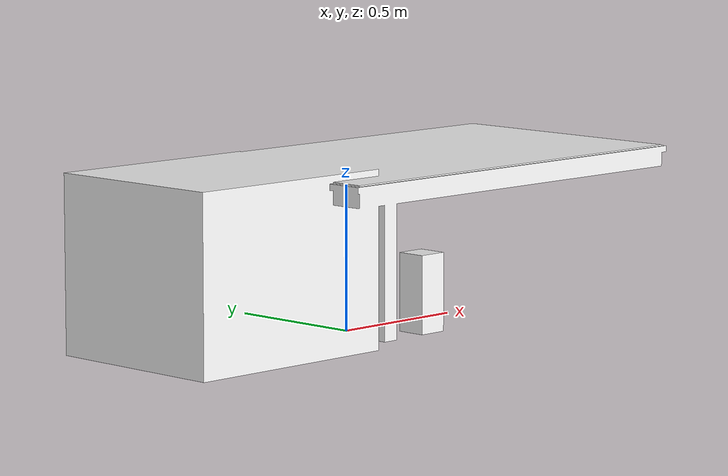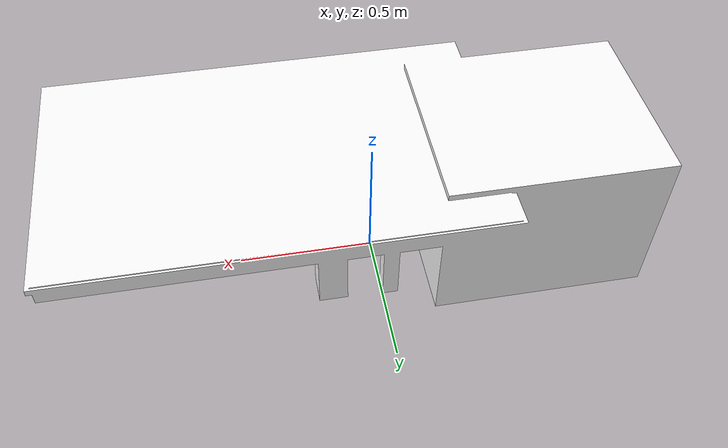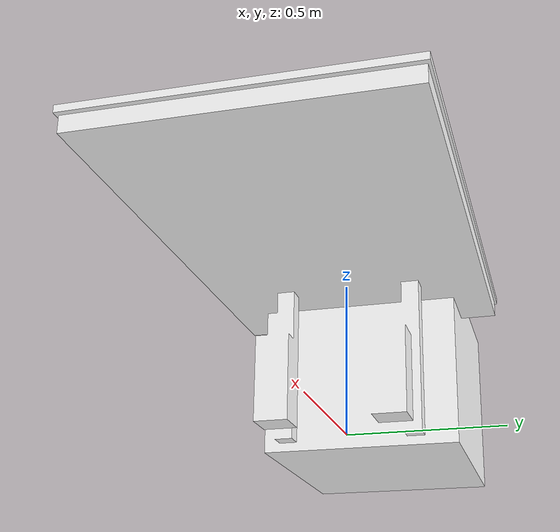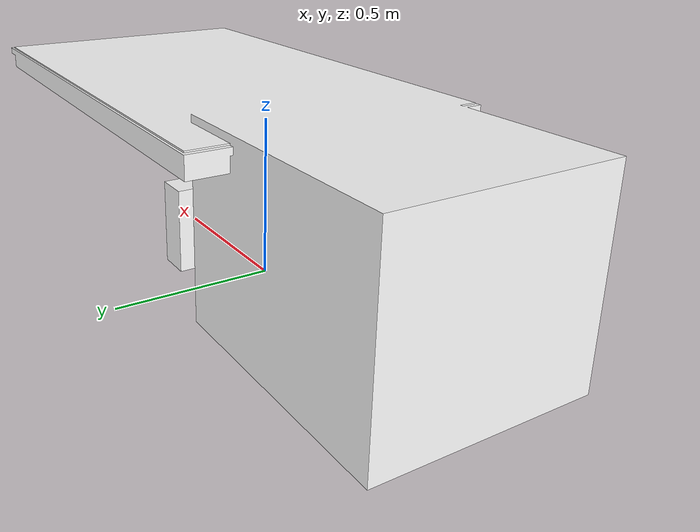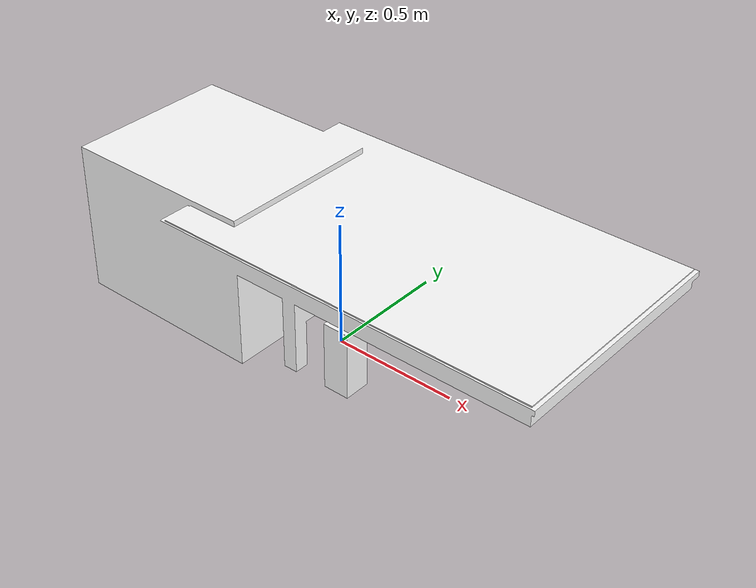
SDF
<?xml version='1.0'?>
<sdf version='1.6'>
  <model name='gas_station_small'>
    <link name='link'>
      <pose frame=''>0 0 0 0 -0 0</pose>
      <self_collide>0</self_collide>
      <enable_wind>0</enable_wind>
      <kinematic>0</kinematic>
      <gravity>1</gravity>
      <inertial>
        <mass>1</mass>
        <pose frame=''>0 0 0 0 -0 0</pose>
        <inertia>
          <ixx>1</ixx>
          <ixy>0</ixy>
          <ixz>0</ixz>
          <iyy>1</iyy>
          <iyz>0</iyz>
          <izz>1</izz>
        </inertia>
      </inertial>
      <visual name='visual'>
        <geometry>
          <mesh>
            <uri>model://gas_station/meshes/gas_station.dae</uri>
            <scale>0.15 0.15 0.15</scale>
          </mesh>
        </geometry>
        <material>
          <script>
            <uri>model://gas_station/materials/scripts</uri>
            <uri>model://gas_station/materials/textures</uri>
            <name>GasStation/Diffuse</name>
          </script>
          <shader type='normal_map_tangent_space'>
            <normal_map>GasStation_Normal.png</normal_map>
          </shader>
          <ambient>1 1 1 1</ambient>
          <diffuse>1 1 1 1</diffuse>
          <specular>0 0 0 1</specular>
          <emissive>0 0 0 1</emissive>
        </material>
        <pose frame=''>0 0 0 0 -0 0</pose>
        <transparency>0</transparency>
        <cast_shadows>1</cast_shadows>
      </visual>
      <collision name='collision'>
        <laser_retro>0</laser_retro>
        <max_contacts>10</max_contacts>
        <pose frame=''>0 0 0 0 -0 0</pose>
        <geometry>
          <mesh>
            <uri>/home/victor/.gazebo/models/gas_station/meshes/gas_station.dae</uri>
            <scale>0.15 0.15 0.15</scale>
          </mesh>
        </geometry>
        <surface>
          <friction>
            <ode>
              <mu>1</mu>
              <mu2>1</mu2>
              <fdir1>0 0 0</fdir1>
              <slip1>0</slip1>
              <slip2>0</slip2>
            </ode>
            <torsional>
              <coefficient>1</coefficient>
              <patch_radius>0</patch_radius>
              <surface_radius>0</surface_radius>
              <use_patch_radius>1</use_patch_radius>
              <ode>
                <slip>0</slip>
              </ode>
            </torsional>
          </friction>
          <bounce>
            <restitution_coefficient>0</restitution_coefficient>
            <threshold>1e+06</threshold>
          </bounce>
          <contact>
            <collide_without_contact>0</collide_without_contact>
            <collide_without_contact_bitmask>1</collide_without_contact_bitmask>
            <collide_bitmask>1</collide_bitmask>
            <ode>
              <soft_cfm>0</soft_cfm>
              <soft_erp>0.2</soft_erp>
              <kp>1e+13</kp>
              <kd>1</kd>
              <max_vel>0.01</max_vel>
              <min_depth>0</min_depth>
            </ode>
            <bullet>
              <split_impulse>1</split_impulse>
              <split_impulse_penetration_threshold>-0.01</split_impulse_penetration_threshold>
              <soft_cfm>0</soft_cfm>
              <soft_erp>0.2</soft_erp>
              <kp>1e+13</kp>
              <kd>1</kd>
            </bullet>
          </contact>
        </surface>
      </collision>
    </link>
    <static>1</static>
    <allow_auto_disable>1</allow_auto_disable>
  </model>
</sdf>
